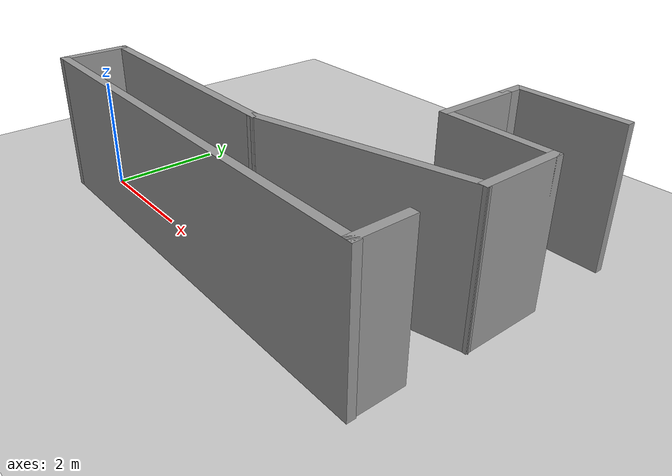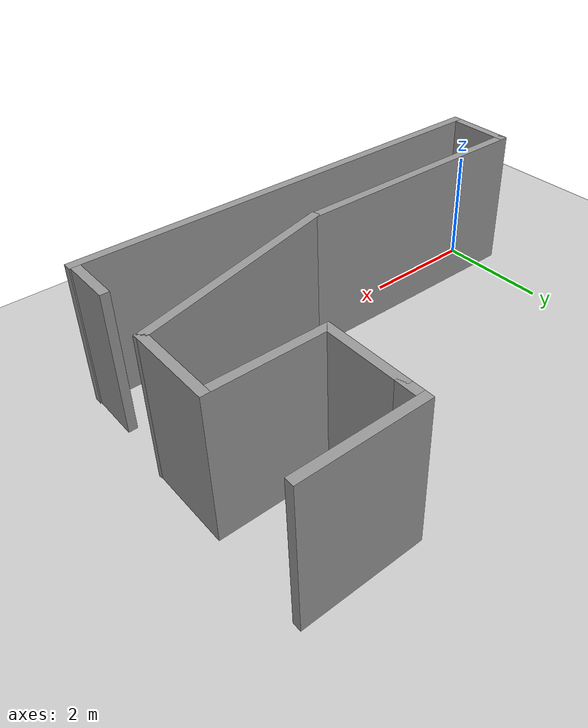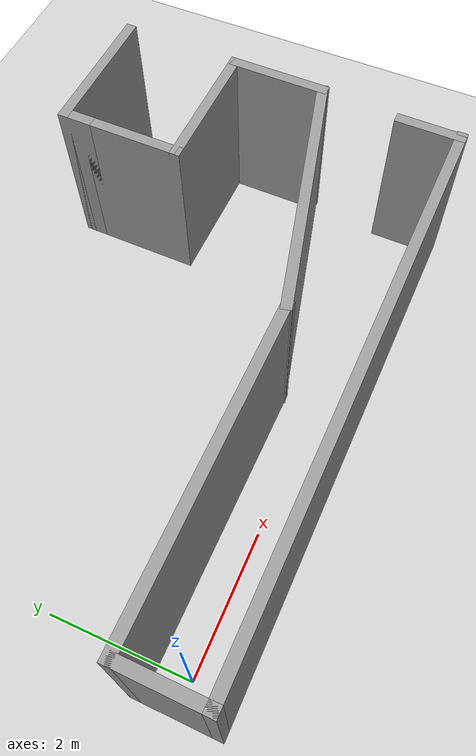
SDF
<sdf version="1.7">
 <world name="default">
  <light name="sun" type="directional">
   <pose>0 0 10 0 -0 0</pose>
   <diffuse>0.8 0.8 0.8 1</diffuse>
   <specular>0.2 0.2 0.2 1</specular>
   <attenuation>
    <range>1000</range>
    <constant>0.9</constant>
    <linear>0.01</linear>
    <quadratic>0.001</quadratic>
   </attenuation>
   <direction>-0.5 0.1 -0.9</direction>
   <spot><inner_angle>0</inner_angle><outer_angle>0</outer_angle><falloff>0</falloff></spot>
  </light>
  <model name="ground_plane">
   <static>1</static>
   <link name="link">
    <collision name="collision">
     <geometry><plane><normal>0 0 1</normal><size>100 100</size></plane></geometry>
     <surface>
      <contact><collide_bitmask>65535</collide_bitmask></contact>
      <friction><ode><mu>100</mu><mu2>50</mu2></ode></friction>
     </surface>
    </collision>
    <visual name="visual">
     <cast_shadows>0</cast_shadows>
     <geometry><plane><normal>0 0 1</normal><size>100 100</size></plane></geometry>
     <material>
      <script><uri>file://media/materials/scripts/gazebo.material</uri><name>Gazebo/Grey</name></script>
     </material>
    </visual>
   </link>
  </model>
  <gravity>0 0 -9.8</gravity>
  <magnetic_field>6e-06 2.3e-05 -4.2e-05</magnetic_field>
  <atmosphere type="adiabatic"/>
  <physics type="ode">
   <max_step_size>0.001</max_step_size>
   <real_time_factor>1</real_time_factor>
   <real_time_update_rate>1000</real_time_update_rate>
  </physics>
  <scene><ambient>0.4 0.4 0.4 1</ambient><background>0.7 0.7 0.7 1</background><shadows>1</shadows></scene>
  <spherical_coordinates>
   <surface_model>EARTH_WGS84</surface_model>
   <latitude_deg>0</latitude_deg>
   <longitude_deg>0</longitude_deg>
   <elevation>0</elevation>
   <heading_deg>0</heading_deg>
  </spherical_coordinates>
  <model name="my_more_complex">
   <pose>3.56033 2.90516 0 0 -0 1.56315</pose>
   <link name="Wall_10">
    <collision name="Wall_10_Collision">
     <geometry><box><size>1.5 0.15 2.5</size></box></geometry>
     <pose>0 0 1.25 0 -0 0</pose>
    </collision>
    <visual name="Wall_10_Visual">
     <pose>0 0 1.25 0 -0 0</pose>
     <geometry><box><size>1.5 0.15 2.5</size></box></geometry>
     <material>
      <script><uri>file://media/materials/scripts/gazebo.material</uri><name>Gazebo/Grey</name></script>
      <ambient>1 1 1 1</ambient>
     </material>
     <meta><layer>0</layer></meta>
    </visual>
    <pose>-0.787504 -3.90524 0 0 -0 0</pose>
   </link>
   <link name="Wall_11">
    <collision name="Wall_11_Collision">
     <geometry><box><size>2 0.15 2.5</size></box></geometry>
     <pose>0 0 1.25 0 -0 0</pose>
    </collision>
    <visual name="Wall_11_Visual">
     <pose>0 0 1.25 0 -0 0</pose>
     <geometry><box><size>2 0.15 2.5</size></box></geometry>
     <material>
      <script><uri>file://media/materials/scripts/gazebo.material</uri><name>Gazebo/Grey</name></script>
      <ambient>1 1 1 1</ambient>
     </material>
     <meta><layer>0</layer></meta>
    </visual>
    <pose>-0.112504 -2.98024 0 0 -0 1.5708</pose>
   </link>
   <link name="Wall_12">
    <collision name="Wall_12_Collision">
     <geometry><box><size>1.5 0.15 2.5</size></box></geometry>
     <pose>0 0 1.25 0 -0 0</pose>
    </collision>
    <visual name="Wall_12_Visual">
     <pose>0 0 1.25 0 -0 0</pose>
     <geometry><box><size>1.5 0.15 2.5</size></box></geometry>
     <material>
      <script><uri>file://media/materials/scripts/gazebo.material</uri><name>Gazebo/Grey</name></script>
      <ambient>1 1 1 1</ambient>
     </material>
     <meta><layer>0</layer></meta>
    </visual>
    <pose>0.562496 -2.05524 0 0 -0 0</pose>
   </link>
   <link name="Wall_13">
    <collision name="Wall_13_Collision">
     <geometry><box><size>0.5 0.15 2.5</size></box></geometry>
     <pose>0 0 1.25 0 -0 0</pose>
    </collision>
    <visual name="Wall_13_Visual">
     <pose>0 0 1.25 0 -0 0</pose>
     <geometry><box><size>0.5 0.15 2.5</size></box></geometry>
     <material>
      <script><uri>file://media/materials/scripts/gazebo.material</uri><name>Gazebo/Grey</name></script>
      <ambient>1 1 1 1</ambient>
     </material>
     <meta><layer>0</layer></meta>
    </visual>
    <pose>1.4125 -2.05524 0 0 -0 0</pose>
   </link>
   <link name="Wall_14">
    <collision name="Wall_14_Collision">
     <geometry><box><size>2 0.15 2.5</size></box></geometry>
     <pose>0 0 1.25 0 -0 0</pose>
    </collision>
    <visual name="Wall_14_Visual">
     <pose>0 0 1.25 0 -0 0</pose>
     <geometry><box><size>2 0.15 2.5</size></box></geometry>
     <material>
      <script><uri>file://media/materials/scripts/gazebo.material</uri><name>Gazebo/Grey</name></script>
      <ambient>1 1 1 1</ambient>
     </material>
     <meta><layer>0</layer></meta>
    </visual>
    <pose>1.5875 -2.98024 0 0 -0 -1.5708</pose>
   </link>
   <link name="Wall_2">
    <collision name="Wall_2_Collision">
     <geometry><box><size>7.91671 0.15 2.5</size></box></geometry>
     <pose>0 0 1.25 0 -0 0</pose>
    </collision>
    <visual name="Wall_2_Visual">
     <pose>0 0 1.25 0 -0 0</pose>
     <geometry><box><size>7.91671 0.15 2.5</size></box></geometry>
     <material>
      <script><uri>file://media/materials/scripts/gazebo.material</uri><name>Gazebo/Grey</name></script>
      <ambient>1 1 1 1</ambient>
     </material>
     <meta><layer>0</layer></meta>
    </visual>
    <pose>-3.49425 0.038741 0 0 -0 -1.5708</pose>
   </link>
   <link name="Wall_3">
    <collision name="Wall_3_Collision">
     <geometry><box><size>1 0.15 2.5</size></box></geometry>
     <pose>0 0 1.25 0 -0 0</pose>
    </collision>
    <visual name="Wall_3_Visual">
     <pose>0 0 1.25 0 -0 0</pose>
     <geometry><box><size>1 0.15 2.5</size></box></geometry>
     <material>
      <script><uri>file://media/materials/scripts/gazebo.material</uri><name>Gazebo/Grey</name></script>
      <ambient>1 1 1 1</ambient>
     </material>
     <meta><layer>0</layer></meta>
    </visual>
    <pose>-3.06925 -3.8245 0 0 -0 0</pose>
   </link>
   <link name="Wall_7">
    <collision name="Wall_7_Collision">
     <geometry><box><size>1.25 0.15 2.5</size></box></geometry>
     <pose>0 0 1.25 0 -0 0</pose>
    </collision>
    <visual name="Wall_7_Visual">
     <pose>0 0 1.25 0 -0 0</pose>
     <geometry><box><size>1.25 0.15 2.5</size></box></geometry>
     <material>
      <script><uri>file://media/materials/scripts/gazebo.material</uri><name>Gazebo/Grey</name></script>
      <ambient>1 1 1 1</ambient>
     </material>
     <meta><layer>0</layer></meta>
    </visual>
    <pose>-2.94425 3.92209 0 0 -0 0</pose>
   </link>
   <link name="Wall_8">
    <collision name="Wall_8_Collision">
     <geometry><box><size>4.5 0.15 2.5</size></box></geometry>
     <pose>0 0 1.25 0 -0 0</pose>
    </collision>
    <visual name="Wall_8_Visual">
     <pose>0 0 1.25 0 -0 0</pose>
     <geometry><box><size>4.5 0.15 2.5</size></box></geometry>
     <material>
      <script><uri>file://media/materials/scripts/gazebo.material</uri><name>Gazebo/Grey</name></script>
      <ambient>1 1 1 1</ambient>
     </material>
     <meta><layer>0</layer></meta>
    </visual>
    <pose>-2.39425 1.74709 0 0 -0 -1.5708</pose>
   </link>
   <link name="Wall_9">
    <collision name="Wall_9_Collision">
     <geometry><box><size>3.75 0.15 2.5</size></box></geometry>
     <pose>0 0 1.25 0 -0 0</pose>
    </collision>
    <visual name="Wall_9_Visual">
     <pose>0 0 1.25 0 -0 0</pose>
     <geometry><box><size>3.75 0.15 2.5</size></box></geometry>
     <material>
      <script><uri>file://media/materials/scripts/gazebo.material</uri><name>Gazebo/Grey</name></script>
      <ambient>1 1 1 1</ambient>
     </material>
     <meta><layer>0</layer></meta>
    </visual>
    <pose>-1.92838 -2.16657 0 0 -0 -1.309</pose>
   </link>
   <static>1</static>
  </model>
 </world>
</sdf>
